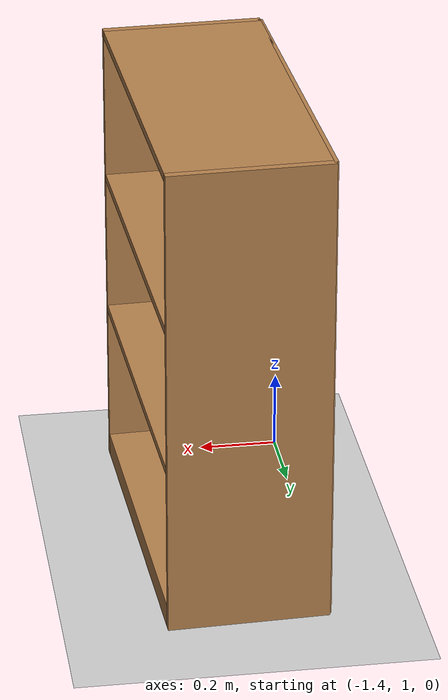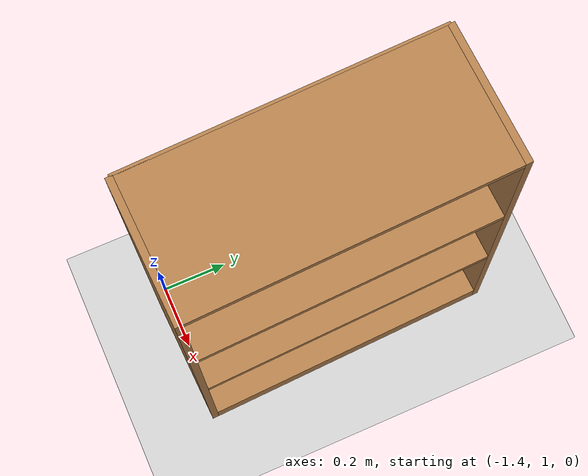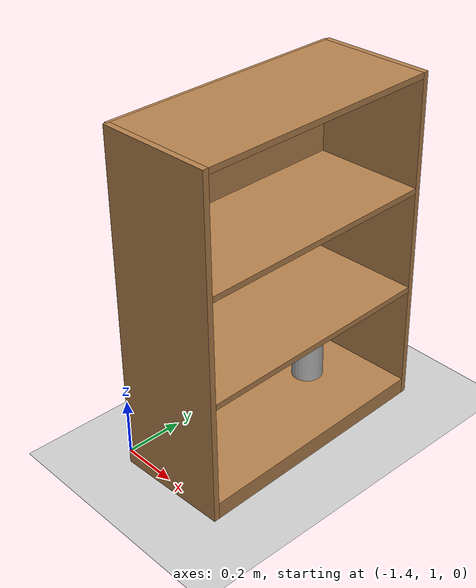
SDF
<sdf version="1.7">
 <world name="default">
  <model name="ground_plane">
   <static>1</static>
   <link name="link">
    <collision name="collision">
     <geometry><plane><normal>0 0 1</normal><size>100 100</size></plane></geometry>
     <surface>
      <contact><collide_bitmask>65535</collide_bitmask></contact>
      <friction><ode><mu>100</mu><mu2>50</mu2></ode></friction>
     </surface>
    </collision>
    <visual name="visual">
     <cast_shadows>0</cast_shadows>
     <geometry><plane><normal>0 0 1</normal><size>100 100</size></plane></geometry>
     <material>
      <script><uri>file://media/materials/scripts/gazebo.material</uri><name>Gazebo/Grey</name></script>
     </material>
    </visual>
   </link>
  </model>
  <model name="Beer_3">
   <link name="link">
    <pose>-0 0 0.115 0 -0 0</pose>
    <inertial>
     <mass>0.39</mass>
     <inertia><ixx>0.00058</ixx><ixy>0</ixy><ixz>0</ixz><iyy>0.00058</iyy><iyz>0</iyz><izz>0.00019</izz></inertia>
    </inertial>
    <visual name="visual">
     <geometry><cylinder><radius>0.055</radius><length>0.23</length></cylinder></geometry>
     <material>
      <script>
       <uri>model://beer/materials/scripts</uri>
       <uri>model://beer/materials/textures</uri>
       <name>Beer/Diffuse</name>
      </script>
      <shader type="pixel"/>
     </material>
    </visual>
    <collision name="collision">
     <geometry><cylinder><radius>0.055</radius><length>0.23</length></cylinder></geometry>
     <surface>
      <friction>
       <ode><mu>1</mu><mu2>1</mu2><fdir1>0 0 0</fdir1><slip1>0</slip1><slip2>0</slip2></ode>
       <torsional>
        <coefficient>1</coefficient>
        <patch_radius>0</patch_radius>
        <surface_radius>0</surface_radius>
        <use_patch_radius>1</use_patch_radius>
        <ode><slip>0</slip></ode>
       </torsional>
      </friction>
      <bounce><restitution_coefficient>0</restitution_coefficient><threshold>1e+06</threshold></bounce>
      <contact>
       <collide_without_contact>0</collide_without_contact>
       <collide_without_contact_bitmask>1</collide_without_contact_bitmask>
       <collide_bitmask>1</collide_bitmask>
       <ode>
        <soft_cfm>0</soft_cfm>
        <soft_erp>0.2</soft_erp>
        <kp>1e+13</kp>
        <kd>1</kd>
        <max_vel>0.01</max_vel>
        <min_depth>0</min_depth>
       </ode>
       <bullet>
        <split_impulse>1</split_impulse>
        <split_impulse_penetration_threshold>-0.01</split_impulse_penetration_threshold>
        <soft_cfm>0</soft_cfm>
        <soft_erp>0.2</soft_erp>
        <kp>1e+13</kp>
        <kd>1</kd>
       </bullet>
      </contact>
     </surface>
    </collision>
   </link>
   <static>0</static>
   <pose>-1.24928 1.66897 0.060003 4.9e-05 -1.8e-05 0.005461</pose>
  </model>
  <model name="FoodShelf_0">
   <link name="link">
    <inertial><mass>1</mass></inertial>
    <visual name="visual1">
     <pose>0 0.005 0.6 0 -0 0</pose>
     <geometry><box><size>0.9 0.01 1.2</size></box></geometry>
     <material>
      <script><uri>file://media/materials/scripts/gazebo.material</uri><name>Gazebo/Wood</name></script>
      <shader type="pixel"/>
     </material>
    </visual>
    <visual name="visual3">
     <pose>-0.45 -0.195 0.6 0 -0 0</pose>
     <geometry><box><size>0.02 0.4 1.2</size></box></geometry>
     <material>
      <script><uri>file://media/materials/scripts/gazebo.material</uri><name>Gazebo/Wood</name></script>
      <shader type="pixel"/>
     </material>
    </visual>
    <visual name="visual2">
     <pose>0.45 -0.195 0.6 0 -0 0</pose>
     <geometry><box><size>0.02 0.4 1.2</size></box></geometry>
     <material>
      <script><uri>file://media/materials/scripts/gazebo.material</uri><name>Gazebo/Wood</name></script>
      <shader type="pixel"/>
     </material>
    </visual>
    <visual name="visual4">
     <pose>0 -0.195 0.03 0 -0 0</pose>
     <geometry><box><size>0.88 0.4 0.06</size></box></geometry>
     <material>
      <script><uri>file://media/materials/scripts/gazebo.material</uri><name>Gazebo/Wood</name></script>
      <shader type="pixel"/>
     </material>
    </visual>
    <visual name="visual5">
     <pose>0 -0.195 1.19 0 -0 0</pose>
     <geometry><box><size>0.88 0.4 0.02</size></box></geometry>
     <material>
      <script><uri>file://media/materials/scripts/gazebo.material</uri><name>Gazebo/Wood</name></script>
      <shader type="pixel"/>
     </material>
    </visual>
    <visual name="visual6">
     <pose>0 -0.195 0.43 0 -0 0</pose>
     <geometry><box><size>0.88 0.4 0.02</size></box></geometry>
     <material>
      <script><uri>file://media/materials/scripts/gazebo.material</uri><name>Gazebo/Wood</name></script>
      <shader type="pixel"/>
     </material>
    </visual>
    <visual name="visual7">
     <pose>0 -0.195 0.8 0 -0 0</pose>
     <geometry><box><size>0.88 0.4 0.02</size></box></geometry>
     <material>
      <script><uri>file://media/materials/scripts/gazebo.material</uri><name>Gazebo/Wood</name></script>
      <shader type="pixel"/>
     </material>
    </visual>
    <collision name="back">
     <pose>0 0.005 0.6 0 -0 0</pose>
     <geometry><box><size>0.9 0.01 1.2</size></box></geometry>
     <surface>
      <friction>
       <ode><mu>1</mu><mu2>1</mu2><fdir1>0 0 0</fdir1><slip1>0</slip1><slip2>0</slip2></ode>
       <torsional>
        <coefficient>1</coefficient>
        <patch_radius>0</patch_radius>
        <surface_radius>0</surface_radius>
        <use_patch_radius>1</use_patch_radius>
        <ode><slip>0</slip></ode>
       </torsional>
      </friction>
      <bounce><restitution_coefficient>0</restitution_coefficient><threshold>1e+06</threshold></bounce>
      <contact>
       <collide_without_contact>0</collide_without_contact>
       <collide_without_contact_bitmask>1</collide_without_contact_bitmask>
       <collide_bitmask>1</collide_bitmask>
       <ode>
        <soft_cfm>0</soft_cfm>
        <soft_erp>0.2</soft_erp>
        <kp>1e+13</kp>
        <kd>1</kd>
        <max_vel>0.01</max_vel>
        <min_depth>0</min_depth>
       </ode>
       <bullet>
        <split_impulse>1</split_impulse>
        <split_impulse_penetration_threshold>-0.01</split_impulse_penetration_threshold>
        <soft_cfm>0</soft_cfm>
        <soft_erp>0.2</soft_erp>
        <kp>1e+13</kp>
        <kd>1</kd>
       </bullet>
      </contact>
     </surface>
    </collision>
    <collision name="left_side">
     <pose>0.45 -0.195 0.6 0 -0 0</pose>
     <geometry><box><size>0.02 0.4 1.2</size></box></geometry>
     <surface>
      <friction>
       <ode><mu>1</mu><mu2>1</mu2><fdir1>0 0 0</fdir1><slip1>0</slip1><slip2>0</slip2></ode>
       <torsional>
        <coefficient>1</coefficient>
        <patch_radius>0</patch_radius>
        <surface_radius>0</surface_radius>
        <use_patch_radius>1</use_patch_radius>
        <ode><slip>0</slip></ode>
       </torsional>
      </friction>
      <bounce><restitution_coefficient>0</restitution_coefficient><threshold>1e+06</threshold></bounce>
      <contact>
       <collide_without_contact>0</collide_without_contact>
       <collide_without_contact_bitmask>1</collide_without_contact_bitmask>
       <collide_bitmask>1</collide_bitmask>
       <ode>
        <soft_cfm>0</soft_cfm>
        <soft_erp>0.2</soft_erp>
        <kp>1e+13</kp>
        <kd>1</kd>
        <max_vel>0.01</max_vel>
        <min_depth>0</min_depth>
       </ode>
       <bullet>
        <split_impulse>1</split_impulse>
        <split_impulse_penetration_threshold>-0.01</split_impulse_penetration_threshold>
        <soft_cfm>0</soft_cfm>
        <soft_erp>0.2</soft_erp>
        <kp>1e+13</kp>
        <kd>1</kd>
       </bullet>
      </contact>
     </surface>
    </collision>
    <collision name="right_side">
     <pose>-0.45 -0.195 0.6 0 -0 0</pose>
     <geometry><box><size>0.02 0.4 1.2</size></box></geometry>
     <surface>
      <friction>
       <ode><mu>1</mu><mu2>1</mu2><fdir1>0 0 0</fdir1><slip1>0</slip1><slip2>0</slip2></ode>
       <torsional>
        <coefficient>1</coefficient>
        <patch_radius>0</patch_radius>
        <surface_radius>0</surface_radius>
        <use_patch_radius>1</use_patch_radius>
        <ode><slip>0</slip></ode>
       </torsional>
      </friction>
      <bounce><restitution_coefficient>0</restitution_coefficient><threshold>1e+06</threshold></bounce>
      <contact>
       <collide_without_contact>0</collide_without_contact>
       <collide_without_contact_bitmask>1</collide_without_contact_bitmask>
       <collide_bitmask>1</collide_bitmask>
       <ode>
        <soft_cfm>0</soft_cfm>
        <soft_erp>0.2</soft_erp>
        <kp>1e+13</kp>
        <kd>1</kd>
        <max_vel>0.01</max_vel>
        <min_depth>0</min_depth>
       </ode>
       <bullet>
        <split_impulse>1</split_impulse>
        <split_impulse_penetration_threshold>-0.01</split_impulse_penetration_threshold>
        <soft_cfm>0</soft_cfm>
        <soft_erp>0.2</soft_erp>
        <kp>1e+13</kp>
        <kd>1</kd>
       </bullet>
      </contact>
     </surface>
    </collision>
    <collision name="bottom">
     <pose>0 -0.195 0.03 0 -0 0</pose>
     <geometry><box><size>0.88 0.4 0.06</size></box></geometry>
     <surface>
      <friction>
       <ode><mu>1</mu><mu2>1</mu2><fdir1>0 0 0</fdir1><slip1>0</slip1><slip2>0</slip2></ode>
       <torsional>
        <coefficient>1</coefficient>
        <patch_radius>0</patch_radius>
        <surface_radius>0</surface_radius>
        <use_patch_radius>1</use_patch_radius>
        <ode><slip>0</slip></ode>
       </torsional>
      </friction>
      <bounce><restitution_coefficient>0</restitution_coefficient><threshold>1e+06</threshold></bounce>
      <contact>
       <collide_without_contact>0</collide_without_contact>
       <collide_without_contact_bitmask>1</collide_without_contact_bitmask>
       <collide_bitmask>1</collide_bitmask>
       <ode>
        <soft_cfm>0</soft_cfm>
        <soft_erp>0.2</soft_erp>
        <kp>1e+13</kp>
        <kd>1</kd>
        <max_vel>0.01</max_vel>
        <min_depth>0</min_depth>
       </ode>
       <bullet>
        <split_impulse>1</split_impulse>
        <split_impulse_penetration_threshold>-0.01</split_impulse_penetration_threshold>
        <soft_cfm>0</soft_cfm>
        <soft_erp>0.2</soft_erp>
        <kp>1e+13</kp>
        <kd>1</kd>
       </bullet>
      </contact>
     </surface>
    </collision>
    <collision name="top">
     <pose>0 -0.195 1.19 0 -0 0</pose>
     <geometry><box><size>0.88 0.4 0.02</size></box></geometry>
     <surface>
      <friction>
       <ode><mu>1</mu><mu2>1</mu2><fdir1>0 0 0</fdir1><slip1>0</slip1><slip2>0</slip2></ode>
       <torsional>
        <coefficient>1</coefficient>
        <patch_radius>0</patch_radius>
        <surface_radius>0</surface_radius>
        <use_patch_radius>1</use_patch_radius>
        <ode><slip>0</slip></ode>
       </torsional>
      </friction>
      <bounce><restitution_coefficient>0</restitution_coefficient><threshold>1e+06</threshold></bounce>
      <contact>
       <collide_without_contact>0</collide_without_contact>
       <collide_without_contact_bitmask>1</collide_without_contact_bitmask>
       <collide_bitmask>1</collide_bitmask>
       <ode>
        <soft_cfm>0</soft_cfm>
        <soft_erp>0.2</soft_erp>
        <kp>1e+13</kp>
        <kd>1</kd>
        <max_vel>0.01</max_vel>
        <min_depth>0</min_depth>
       </ode>
       <bullet>
        <split_impulse>1</split_impulse>
        <split_impulse_penetration_threshold>-0.01</split_impulse_penetration_threshold>
        <soft_cfm>0</soft_cfm>
        <soft_erp>0.2</soft_erp>
        <kp>1e+13</kp>
        <kd>1</kd>
       </bullet>
      </contact>
     </surface>
    </collision>
    <collision name="low_shelf">
     <pose>0 -0.195 0.43 0 -0 0</pose>
     <geometry><box><size>0.88 0.4 0.02</size></box></geometry>
     <surface>
      <friction>
       <ode><mu>1</mu><mu2>1</mu2><fdir1>0 0 0</fdir1><slip1>0</slip1><slip2>0</slip2></ode>
       <torsional>
        <coefficient>1</coefficient>
        <patch_radius>0</patch_radius>
        <surface_radius>0</surface_radius>
        <use_patch_radius>1</use_patch_radius>
        <ode><slip>0</slip></ode>
       </torsional>
      </friction>
      <bounce><restitution_coefficient>0</restitution_coefficient><threshold>1e+06</threshold></bounce>
      <contact>
       <collide_without_contact>0</collide_without_contact>
       <collide_without_contact_bitmask>1</collide_without_contact_bitmask>
       <collide_bitmask>1</collide_bitmask>
       <ode>
        <soft_cfm>0</soft_cfm>
        <soft_erp>0.2</soft_erp>
        <kp>1e+13</kp>
        <kd>1</kd>
        <max_vel>0.01</max_vel>
        <min_depth>0</min_depth>
       </ode>
       <bullet>
        <split_impulse>1</split_impulse>
        <split_impulse_penetration_threshold>-0.01</split_impulse_penetration_threshold>
        <soft_cfm>0</soft_cfm>
        <soft_erp>0.2</soft_erp>
        <kp>1e+13</kp>
        <kd>1</kd>
       </bullet>
      </contact>
     </surface>
    </collision>
    <collision name="high_shelf">
     <pose>0 -0.195 0.8 0 -0 0</pose>
     <geometry><box><size>0.88 0.4 0.02</size></box></geometry>
     <surface>
      <friction>
       <ode><mu>1</mu><mu2>1</mu2><fdir1>0 0 0</fdir1><slip1>0</slip1><slip2>0</slip2></ode>
       <torsional>
        <coefficient>1</coefficient>
        <patch_radius>0</patch_radius>
        <surface_radius>0</surface_radius>
        <use_patch_radius>1</use_patch_radius>
        <ode><slip>0</slip></ode>
       </torsional>
      </friction>
      <bounce><restitution_coefficient>0</restitution_coefficient><threshold>1e+06</threshold></bounce>
      <contact>
       <collide_without_contact>0</collide_without_contact>
       <collide_without_contact_bitmask>1</collide_without_contact_bitmask>
       <collide_bitmask>1</collide_bitmask>
       <ode>
        <soft_cfm>0</soft_cfm>
        <soft_erp>0.2</soft_erp>
        <kp>1e+13</kp>
        <kd>1</kd>
        <max_vel>0.01</max_vel>
        <min_depth>0</min_depth>
       </ode>
       <bullet>
        <split_impulse>1</split_impulse>
        <split_impulse_penetration_threshold>-0.01</split_impulse_penetration_threshold>
        <soft_cfm>0</soft_cfm>
        <soft_erp>0.2</soft_erp>
        <kp>1e+13</kp>
        <kd>1</kd>
       </bullet>
      </contact>
     </surface>
    </collision>
   </link>
   <static>1</static>
   <pose>-1.37003 1.42571 0 0 -0 1.60864</pose>
  </model>
 </world>
</sdf>
